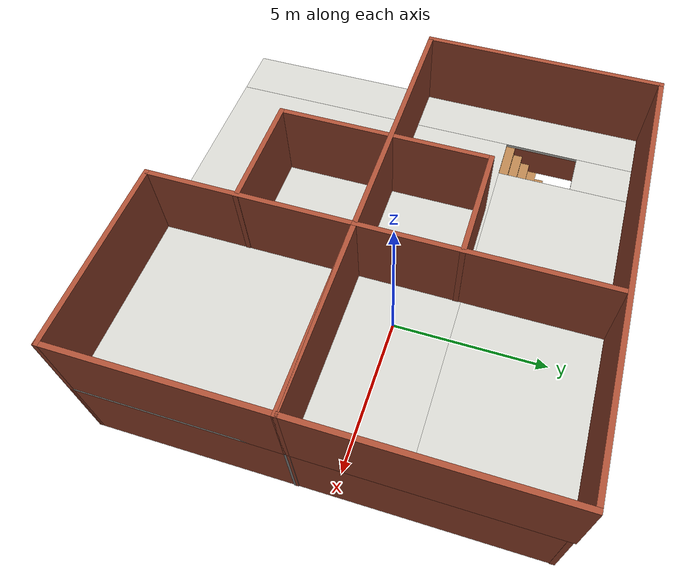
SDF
<?xml version='1.0'?>
<sdf version='1.6'>
  <model name='Robot_House'>
    <pose frame=''>-1.0701 -0.513506 0 0 -0 0</pose>
    <link name='Floor_0'>
      <pose frame=''>0.01984 0.000185 2.5 0 -0 0</pose>
      <visual name='Floor_0_Visual_0'>
        <pose frame=''>-5.97371 0 0.05 0 -0 0</pose>
        <geometry>
          <box>
            <size>1.55259 13.5 0.1</size>
          </box>
        </geometry>
        <material>
          <script>
            <uri>file://media/materials/scripts/gazebo.material</uri>
            <name>Gazebo/CeilingTiled</name>
          </script>
          <ambient>1 1 1 1</ambient>
        </material>
        <meta>
          <layer>1</layer>
        </meta>
      </visual>
      <collision name='Floor_0_Collision_0'>
        <geometry>
          <box>
            <size>1.55259 13.5 0.1</size>
          </box>
        </geometry>
        <pose frame=''>-5.97371 0 0.05 0 -0 0</pose>
      </collision>
      <visual name='Floor_0_Visual_1'>
        <pose frame=''>0.776293 -2.10421 0.05 0 -0 0</pose>
        <geometry>
          <box>
            <size>11.9474 9.29157 0.1</size>
          </box>
        </geometry>
        <material>
          <script>
            <uri>file://media/materials/scripts/gazebo.material</uri>
            <name>Gazebo/CeilingTiled</name>
          </script>
          <ambient>1 1 1 1</ambient>
        </material>
        <meta>
          <layer>1</layer>
        </meta>
      </visual>
      <collision name='Floor_0_Collision_1'>
        <geometry>
          <box>
            <size>11.9474 9.29157 0.1</size>
          </box>
        </geometry>
        <pose frame=''>0.776293 -2.10421 0.05 0 -0 0</pose>
      </collision>
      <visual name='Floor_0_Visual_2'>
        <pose frame=''>1.42519 4.64579 0.05 0 -0 0</pose>
        <geometry>
          <box>
            <size>10.6496 4.20843 0.1</size>
          </box>
        </geometry>
        <material>
          <script>
            <uri>file://media/materials/scripts/gazebo.material</uri>
            <name>Gazebo/CeilingTiled</name>
          </script>
          <ambient>1 1 1 1</ambient>
        </material>
        <meta>
          <layer>1</layer>
        </meta>
      </visual>
      <collision name='Floor_0_Collision_2'>
        <geometry>
          <box>
            <size>10.6496 4.20843 0.1</size>
          </box>
        </geometry>
        <pose frame=''>1.42519 4.64579 0.05 0 -0 0</pose>
      </collision>
      <visual name='Floor_0_Visual_3'>
        <pose frame=''>-4.54852 5.79303 0.05 0 -0 0</pose>
        <geometry>
          <box>
            <size>1.29779 1.91393 0.1</size>
          </box>
        </geometry>
        <material>
          <script>
            <uri>file://media/materials/scripts/gazebo.material</uri>
            <name>Gazebo/CeilingTiled</name>
          </script>
          <ambient>1 1 1 1</ambient>
        </material>
        <meta>
          <layer>1</layer>
        </meta>
      </visual>
      <collision name='Floor_0_Collision_3'>
        <geometry>
          <box>
            <size>1.29779 1.91393 0.1</size>
          </box>
        </geometry>
        <pose frame=''>-4.54852 5.79303 0.05 0 -0 0</pose>
      </collision>
    </link>
    <link name='Stairs_1'>
      <visual name='Stairs_1_Visual_0'>
        <pose frame=''>-4.52868 4.69285 0.15625 0 -0 0</pose>
        <geometry>
          <box>
            <size>1.29779 0.286812 0.3125</size>
          </box>
        </geometry>
        <material>
          <script>
            <uri>file://media/materials/scripts/gazebo.material</uri>
            <name>Gazebo/Wood</name>
          </script>
          <ambient>1 1 1 1</ambient>
        </material>
        <meta>
          <layer>0</layer>
        </meta>
      </visual>
      <collision name='Stairs_1_Collision_0'>
        <geometry>
          <box>
            <size>1.29779 0.286812 0.3125</size>
          </box>
        </geometry>
        <pose frame=''>-4.52868 4.69285 0.15625 0 -0 0</pose>
      </collision>
      <visual name='Stairs_1_Visual_1'>
        <pose frame=''>-4.52868 4.40604 0.46875 0 -0 0</pose>
        <geometry>
          <box>
            <size>1.29779 0.286812 0.3125</size>
          </box>
        </geometry>
        <material>
          <script>
            <uri>file://media/materials/scripts/gazebo.material</uri>
            <name>Gazebo/Wood</name>
          </script>
          <ambient>1 1 1 1</ambient>
        </material>
        <meta>
          <layer>0</layer>
        </meta>
      </visual>
      <collision name='Stairs_1_Collision_1'>
        <geometry>
          <box>
            <size>1.29779 0.286812 0.3125</size>
          </box>
        </geometry>
        <pose frame=''>-4.52868 4.40604 0.46875 0 -0 0</pose>
      </collision>
      <visual name='Stairs_1_Visual_2'>
        <pose frame=''>-4.52868 4.11922 0.78125 0 -0 0</pose>
        <geometry>
          <box>
            <size>1.29779 0.286812 0.3125</size>
          </box>
        </geometry>
        <material>
          <script>
            <uri>file://media/materials/scripts/gazebo.material</uri>
            <name>Gazebo/Wood</name>
          </script>
          <ambient>1 1 1 1</ambient>
        </material>
        <meta>
          <layer>0</layer>
        </meta>
      </visual>
      <collision name='Stairs_1_Collision_2'>
        <geometry>
          <box>
            <size>1.29779 0.286812 0.3125</size>
          </box>
        </geometry>
        <pose frame=''>-4.52868 4.11922 0.78125 0 -0 0</pose>
      </collision>
      <visual name='Stairs_1_Visual_3'>
        <pose frame=''>-4.52868 3.83241 1.09375 0 -0 0</pose>
        <geometry>
          <box>
            <size>1.29779 0.286812 0.3125</size>
          </box>
        </geometry>
        <material>
          <script>
            <uri>file://media/materials/scripts/gazebo.material</uri>
            <name>Gazebo/Wood</name>
          </script>
          <ambient>1 1 1 1</ambient>
        </material>
        <meta>
          <layer>0</layer>
        </meta>
      </visual>
      <collision name='Stairs_1_Collision_3'>
        <geometry>
          <box>
            <size>1.29779 0.286812 0.3125</size>
          </box>
        </geometry>
        <pose frame=''>-4.52868 3.83241 1.09375 0 -0 0</pose>
      </collision>
      <visual name='Stairs_1_Visual_4'>
        <pose frame=''>-4.52868 3.5456 1.40625 0 -0 0</pose>
        <geometry>
          <box>
            <size>1.29779 0.286812 0.3125</size>
          </box>
        </geometry>
        <material>
          <script>
            <uri>file://media/materials/scripts/gazebo.material</uri>
            <name>Gazebo/Wood</name>
          </script>
          <ambient>1 1 1 1</ambient>
        </material>
        <meta>
          <layer>0</layer>
        </meta>
      </visual>
      <collision name='Stairs_1_Collision_4'>
        <geometry>
          <box>
            <size>1.29779 0.286812 0.3125</size>
          </box>
        </geometry>
        <pose frame=''>-4.52868 3.5456 1.40625 0 -0 0</pose>
      </collision>
      <visual name='Stairs_1_Visual_5'>
        <pose frame=''>-4.52868 3.25879 1.71875 0 -0 0</pose>
        <geometry>
          <box>
            <size>1.29779 0.286812 0.3125</size>
          </box>
        </geometry>
        <material>
          <script>
            <uri>file://media/materials/scripts/gazebo.material</uri>
            <name>Gazebo/Wood</name>
          </script>
          <ambient>1 1 1 1</ambient>
        </material>
        <meta>
          <layer>0</layer>
        </meta>
      </visual>
      <collision name='Stairs_1_Collision_5'>
        <geometry>
          <box>
            <size>1.29779 0.286812 0.3125</size>
          </box>
        </geometry>
        <pose frame=''>-4.52868 3.25879 1.71875 0 -0 0</pose>
      </collision>
      <visual name='Stairs_1_Visual_6'>
        <pose frame=''>-4.52868 2.97197 2.03125 0 -0 0</pose>
        <geometry>
          <box>
            <size>1.29779 0.286812 0.3125</size>
          </box>
        </geometry>
        <material>
          <script>
            <uri>file://media/materials/scripts/gazebo.material</uri>
            <name>Gazebo/Wood</name>
          </script>
          <ambient>1 1 1 1</ambient>
        </material>
        <meta>
          <layer>0</layer>
        </meta>
      </visual>
      <collision name='Stairs_1_Collision_6'>
        <geometry>
          <box>
            <size>1.29779 0.286812 0.3125</size>
          </box>
        </geometry>
        <pose frame=''>-4.52868 2.97197 2.03125 0 -0 0</pose>
      </collision>
      <visual name='Stairs_1_Visual_7'>
        <pose frame=''>-4.52868 2.68516 2.34375 0 -0 0</pose>
        <geometry>
          <box>
            <size>1.29779 0.286812 0.3125</size>
          </box>
        </geometry>
        <material>
          <script>
            <uri>file://media/materials/scripts/gazebo.material</uri>
            <name>Gazebo/Wood</name>
          </script>
          <ambient>1 1 1 1</ambient>
        </material>
        <meta>
          <layer>0</layer>
        </meta>
      </visual>
      <collision name='Stairs_1_Collision_7'>
        <geometry>
          <box>
            <size>1.29779 0.286812 0.3125</size>
          </box>
        </geometry>
        <pose frame=''>-4.52868 2.68516 2.34375 0 -0 0</pose>
      </collision>
    </link>
    <link name='Wall_15'>
      <collision name='Wall_15_Collision'>
        <geometry>
          <box>
            <size>13.5 0.15 2.5</size>
          </box>
        </geometry>
        <pose frame=''>0 0 1.25 0 -0 0</pose>
      </collision>
      <visual name='Wall_15_Visual'>
        <pose frame=''>0 0 1.25 0 -0 0</pose>
        <geometry>
          <box>
            <size>13.5 0.15 2.5</size>
          </box>
        </geometry>
        <material>
          <script>
            <uri>file://media/materials/scripts/gazebo.material</uri>
            <name>Gazebo/Bricks</name>
          </script>
          <ambient>1 1 1 1</ambient>
        </material>
        <meta>
          <layer>0</layer>
        </meta>
      </visual>
      <pose frame=''>-0.007107 6.63249 0 0 -0 0</pose>
    </link>
    <link name='Wall_16'>
      <collision name='Wall_16_Collision'>
        <geometry>
          <box>
            <size>13.4574 0.15 2.5</size>
          </box>
        </geometry>
        <pose frame=''>0 0 1.25 0 -0 0</pose>
      </collision>
      <visual name='Wall_16_Visual'>
        <pose frame=''>0 0 1.25 0 -0 0</pose>
        <geometry>
          <box>
            <size>13.4574 0.15 2.5</size>
          </box>
        </geometry>
        <material>
          <script>
            <uri>file://media/materials/scripts/gazebo.material</uri>
            <name>Gazebo/Bricks</name>
          </script>
          <ambient>1 1 1 1</ambient>
        </material>
        <meta>
          <layer>0</layer>
        </meta>
      </visual>
      <pose frame=''>6.67509 -0.021162 0 0 -0 -1.56783</pose>
    </link>
    <link name='Wall_17'>
      <pose frame=''>3.89484 -6.67481 0 0 -0 3.14159</pose>
      <visual name='Wall_17_Visual_0'>
        <pose frame=''>-1.68916 0 1.25 0 -0 0</pose>
        <geometry>
          <box>
            <size>2.37168 0.15 2.5</size>
          </box>
        </geometry>
        <material>
          <script>
            <uri>file://media/materials/scripts/gazebo.material</uri>
            <name>Gazebo/Bricks</name>
          </script>
          <ambient>1 1 1 1</ambient>
        </material>
        <meta>
          <layer>0</layer>
        </meta>
      </visual>
      <collision name='Wall_17_Collision_0'>
        <geometry>
          <box>
            <size>2.37168 0.15 2.5</size>
          </box>
        </geometry>
        <pose frame=''>-1.68916 0 1.25 0 -0 0</pose>
      </collision>
      <visual name='Wall_17_Visual_1'>
        <pose frame=''>1.18584 0 0.25 0 -0 0</pose>
        <geometry>
          <box>
            <size>3.37832 0.15 0.5</size>
          </box>
        </geometry>
        <material>
          <script>
            <uri>file://media/materials/scripts/gazebo.material</uri>
            <name>Gazebo/Bricks</name>
          </script>
          <ambient>1 1 1 1</ambient>
        </material>
        <meta>
          <layer>0</layer>
        </meta>
      </visual>
      <collision name='Wall_17_Collision_1'>
        <geometry>
          <box>
            <size>3.37832 0.15 0.5</size>
          </box>
        </geometry>
        <pose frame=''>1.18584 0 0.25 0 -0 0</pose>
      </collision>
      <visual name='Wall_17_Visual_2'>
        <pose frame=''>1.58584 0 1.5 0 -0 0</pose>
        <geometry>
          <box>
            <size>2.57832 0.15 2</size>
          </box>
        </geometry>
        <material>
          <script>
            <uri>file://media/materials/scripts/gazebo.material</uri>
            <name>Gazebo/Bricks</name>
          </script>
          <ambient>1 1 1 1</ambient>
        </material>
        <meta>
          <layer>0</layer>
        </meta>
      </visual>
      <collision name='Wall_17_Collision_2'>
        <geometry>
          <box>
            <size>2.57832 0.15 2</size>
          </box>
        </geometry>
        <pose frame=''>1.58584 0 1.5 0 -0 0</pose>
      </collision>
      <visual name='Wall_17_Visual_3'>
        <pose frame=''>-0.103324 0 1.9 0 -0 0</pose>
        <geometry>
          <box>
            <size>0.8 0.15 1.2</size>
          </box>
        </geometry>
        <material>
          <script>
            <uri>file://media/materials/scripts/gazebo.material</uri>
            <name>Gazebo/Bricks</name>
          </script>
          <ambient>1 1 1 1</ambient>
        </material>
        <meta>
          <layer>0</layer>
        </meta>
      </visual>
      <collision name='Wall_17_Collision_3'>
        <geometry>
          <box>
            <size>0.8 0.15 1.2</size>
          </box>
        </geometry>
        <pose frame=''>-0.103324 0 1.9 0 -0 0</pose>
      </collision>
    </link>
    <link name='Wall_18'>
      <collision name='Wall_18_Collision'>
        <geometry>
          <box>
            <size>6.23392 0.15 2.5</size>
          </box>
        </geometry>
        <pose frame=''>0 0 1.25 0 -0 0</pose>
      </collision>
      <visual name='Wall_18_Visual'>
        <pose frame=''>0 0 1.25 0 -0 0</pose>
        <geometry>
          <box>
            <size>6.23392 0.15 2.5</size>
          </box>
        </geometry>
        <material>
          <script>
            <uri>file://media/materials/scripts/gazebo.material</uri>
            <name>Gazebo/Bricks</name>
          </script>
          <ambient>1 1 1 1</ambient>
        </material>
        <meta>
          <layer>0</layer>
        </meta>
      </visual>
      <pose frame=''>1.07979 -3.63289 0 0 -0 1.57574</pose>
    </link>
    <link name='Wall_19'>
      <collision name='Wall_19_Collision'>
        <geometry>
          <box>
            <size>5.78009 0.15 2.5</size>
          </box>
        </geometry>
        <pose frame=''>0 0 1.25 0 -0 0</pose>
      </collision>
      <visual name='Wall_19_Visual'>
        <pose frame=''>0 0 1.25 0 -0 0</pose>
        <geometry>
          <box>
            <size>5.78009 0.15 2.5</size>
          </box>
        </geometry>
        <material>
          <script>
            <uri>file://media/materials/scripts/gazebo.material</uri>
            <name>Gazebo/Grey</name>
          </script>
          <ambient>1 1 1 1</ambient>
        </material>
        <meta>
          <layer>0</layer>
        </meta>
      </visual>
      <pose frame=''>3.87979 -0.582893 0 0 -0 0.00287</pose>
    </link>
    <link name='Wall_20'>
      <pose frame=''>0.01984 -0.574815 0 0 -0 3.14159</pose>
      <visual name='Wall_20_Visual_0'>
        <pose frame=''>-5.51781 0 1.25 0 -0 0</pose>
        <geometry>
          <box>
            <size>2.46439 0.15 2.5</size>
          </box>
        </geometry>
        <material>
          <script>
            <uri>file://media/materials/scripts/gazebo.material</uri>
            <name>Gazebo/Bricks</name>
          </script>
          <ambient>1 1 1 1</ambient>
        </material>
        <meta>
          <layer>0</layer>
        </meta>
      </visual>
      <collision name='Wall_20_Collision_0'>
        <geometry>
          <box>
            <size>2.46439 0.15 2.5</size>
          </box>
        </geometry>
        <pose frame=''>-5.51781 0 1.25 0 -0 0</pose>
      </collision>
      <visual name='Wall_20_Visual_1'>
        <pose frame=''>-1.3884 0 1.25 0 -0 0</pose>
        <geometry>
          <box>
            <size>3.99444 0.15 2.5</size>
          </box>
        </geometry>
        <material>
          <script>
            <uri>file://media/materials/scripts/gazebo.material</uri>
            <name>Gazebo/Bricks</name>
          </script>
          <ambient>1 1 1 1</ambient>
        </material>
        <meta>
          <layer>0</layer>
        </meta>
      </visual>
      <collision name='Wall_20_Collision_1'>
        <geometry>
          <box>
            <size>3.99444 0.15 2.5</size>
          </box>
        </geometry>
        <pose frame=''>-1.3884 0 1.25 0 -0 0</pose>
      </collision>
      <visual name='Wall_20_Visual_2'>
        <pose frame=''>4.12941 0 1.25 0 -0 0</pose>
        <geometry>
          <box>
            <size>5.24118 0.15 2.5</size>
          </box>
        </geometry>
        <material>
          <script>
            <uri>file://media/materials/scripts/gazebo.material</uri>
            <name>Gazebo/Bricks</name>
          </script>
          <ambient>1 1 1 1</ambient>
        </material>
        <meta>
          <layer>0</layer>
        </meta>
      </visual>
      <collision name='Wall_20_Collision_2'>
        <geometry>
          <box>
            <size>5.24118 0.15 2.5</size>
          </box>
        </geometry>
        <pose frame=''>4.12941 0 1.25 0 -0 0</pose>
      </collision>
      <visual name='Wall_20_Visual_3'>
        <pose frame=''>-3.83562 0 2.25 0 -0 0</pose>
        <geometry>
          <box>
            <size>0.9 0.15 0.5</size>
          </box>
        </geometry>
        <material>
          <script>
            <uri>file://media/materials/scripts/gazebo.material</uri>
            <name>Gazebo/Bricks</name>
          </script>
          <ambient>1 1 1 1</ambient>
        </material>
        <meta>
          <layer>0</layer>
        </meta>
      </visual>
      <collision name='Wall_20_Collision_3'>
        <geometry>
          <box>
            <size>0.9 0.15 0.5</size>
          </box>
        </geometry>
        <pose frame=''>-3.83562 0 2.25 0 -0 0</pose>
      </collision>
      <visual name='Wall_20_Visual_4'>
        <pose frame=''>1.05882 0 2.25 0 -0 0</pose>
        <geometry>
          <box>
            <size>0.9 0.15 0.5</size>
          </box>
        </geometry>
        <material>
          <script>
            <uri>file://media/materials/scripts/gazebo.material</uri>
            <name>Gazebo/Bricks</name>
          </script>
          <ambient>1 1 1 1</ambient>
        </material>
        <meta>
          <layer>0</layer>
        </meta>
      </visual>
      <collision name='Wall_20_Collision_4'>
        <geometry>
          <box>
            <size>0.9 0.15 0.5</size>
          </box>
        </geometry>
        <pose frame=''>1.05882 0 2.25 0 -0 0</pose>
      </collision>
    </link>
    <link name='Wall_21'>
      <collision name='Wall_21_Collision'>
        <geometry>
          <box>
            <size>7.35756 0.15 2.5</size>
          </box>
        </geometry>
        <pose frame=''>0 0 1.25 0 -0 0</pose>
      </collision>
      <visual name='Wall_21_Visual'>
        <pose frame=''>0 0 1.25 0 -0 0</pose>
        <geometry>
          <box>
            <size>7.35756 0.15 2.5</size>
          </box>
        </geometry>
        <material>
          <script>
            <uri>file://media/materials/scripts/gazebo.material</uri>
            <name>Gazebo/Bricks</name>
          </script>
          <ambient>1 1 1 1</ambient>
        </material>
        <meta>
          <layer>0</layer>
        </meta>
      </visual>
      <pose frame=''>-6.67491 3.02884 0 0 -0 1.57628</pose>
    </link>
    <link name='Wall_23'>
      <pose frame=''>1.06475 2.96851 0 0 -0 1.5708</pose>
      <visual name='Wall_23_Visual_0'>
        <pose frame=''>-3.16683 0 1.25 0 -0 0</pose>
        <geometry>
          <box>
            <size>0.916334 0.15 2.5</size>
          </box>
        </geometry>
        <material>
          <script>
            <uri>file://media/materials/scripts/gazebo.material</uri>
            <name>Gazebo/Bricks</name>
          </script>
          <ambient>1 1 1 1</ambient>
        </material>
        <meta>
          <layer>0</layer>
        </meta>
      </visual>
      <collision name='Wall_23_Collision_0'>
        <geometry>
          <box>
            <size>0.916334 0.15 2.5</size>
          </box>
        </geometry>
        <pose frame=''>-3.16683 0 1.25 0 -0 0</pose>
      </collision>
      <visual name='Wall_23_Visual_1'>
        <pose frame=''>0.908167 0 1.25 0 -0 0</pose>
        <geometry>
          <box>
            <size>5.43367 0.15 2.5</size>
          </box>
        </geometry>
        <material>
          <script>
            <uri>file://media/materials/scripts/gazebo.material</uri>
            <name>Gazebo/Bricks</name>
          </script>
          <ambient>1 1 1 1</ambient>
        </material>
        <meta>
          <layer>0</layer>
        </meta>
      </visual>
      <collision name='Wall_23_Collision_1'>
        <geometry>
          <box>
            <size>5.43367 0.15 2.5</size>
          </box>
        </geometry>
        <pose frame=''>0.908167 0 1.25 0 -0 0</pose>
      </collision>
      <visual name='Wall_23_Visual_2'>
        <pose frame=''>-2.25867 0 2.25 0 -0 0</pose>
        <geometry>
          <box>
            <size>0.9 0.15 0.5</size>
          </box>
        </geometry>
        <material>
          <script>
            <uri>file://media/materials/scripts/gazebo.material</uri>
            <name>Gazebo/Bricks</name>
          </script>
          <ambient>1 1 1 1</ambient>
        </material>
        <meta>
          <layer>0</layer>
        </meta>
      </visual>
      <collision name='Wall_23_Collision_2'>
        <geometry>
          <box>
            <size>0.9 0.15 0.5</size>
          </box>
        </geometry>
        <pose frame=''>-2.25867 0 2.25 0 -0 0</pose>
      </collision>
    </link>
    <link name='Wall_26'>
      <collision name='Wall_26_Collision'>
        <geometry>
          <box>
            <size>3.5 0.15 2.5</size>
          </box>
        </geometry>
        <pose frame=''>0 0 1.25 0 -0 0</pose>
      </collision>
      <visual name='Wall_26_Visual'>
        <pose frame=''>0 0 1.25 0 -0 0</pose>
        <geometry>
          <box>
            <size>3.5 0.15 2.5</size>
          </box>
        </geometry>
        <material>
          <script>
            <uri>file://media/materials/scripts/gazebo.material</uri>
            <name>Gazebo/Bricks</name>
          </script>
          <ambient>1 1 1 1</ambient>
        </material>
        <meta>
          <layer>0</layer>
        </meta>
      </visual>
      <pose frame=''>-0.566321 2.39099 0 0 -0 3.14159</pose>
    </link>
    <link name='Wall_27'>
      <pose frame=''>-2.24132 -0.784006 0 0 -0 -1.5708</pose>
      <visual name='Wall_27_Visual_0'>
        <pose frame=''>-2.5661 0 1.25 0 -0 0</pose>
        <geometry>
          <box>
            <size>1.3678 0.15 2.5</size>
          </box>
        </geometry>
        <material>
          <script>
            <uri>file://media/materials/scripts/gazebo.material</uri>
            <name>Gazebo/Bricks</name>
          </script>
          <ambient>1 1 1 1</ambient>
        </material>
        <meta>
          <layer>0</layer>
        </meta>
      </visual>
      <collision name='Wall_27_Collision_0'>
        <geometry>
          <box>
            <size>1.3678 0.15 2.5</size>
          </box>
        </geometry>
        <pose frame=''>-2.5661 0 1.25 0 -0 0</pose>
      </collision>
      <visual name='Wall_27_Visual_1'>
        <pose frame=''>1.1339 0 1.25 0 -0 0</pose>
        <geometry>
          <box>
            <size>4.2322 0.15 2.5</size>
          </box>
        </geometry>
        <material>
          <script>
            <uri>file://media/materials/scripts/gazebo.material</uri>
            <name>Gazebo/Bricks</name>
          </script>
          <ambient>1 1 1 1</ambient>
        </material>
        <meta>
          <layer>0</layer>
        </meta>
      </visual>
      <collision name='Wall_27_Collision_1'>
        <geometry>
          <box>
            <size>4.2322 0.15 2.5</size>
          </box>
        </geometry>
        <pose frame=''>1.1339 0 1.25 0 -0 0</pose>
      </collision>
      <visual name='Wall_27_Visual_2'>
        <pose frame=''>-1.4322 0 2.25 0 -0 0</pose>
        <geometry>
          <box>
            <size>0.9 0.15 0.5</size>
          </box>
        </geometry>
        <material>
          <script>
            <uri>file://media/materials/scripts/gazebo.material</uri>
            <name>Gazebo/Bricks</name>
          </script>
          <ambient>1 1 1 1</ambient>
        </material>
        <meta>
          <layer>0</layer>
        </meta>
      </visual>
      <collision name='Wall_27_Collision_2'>
        <geometry>
          <box>
            <size>0.9 0.15 0.5</size>
          </box>
        </geometry>
        <pose frame=''>-1.4322 0 2.25 0 -0 0</pose>
      </collision>
    </link>
    <link name='Wall_28'>
      <pose frame=''>-0.566321 -3.95901 0 0 -0 0</pose>
      <visual name='Wall_28_Visual_0'>
        <pose frame=''>-1.15279 0 1.25 0 -0 0</pose>
        <geometry>
          <box>
            <size>1.19442 0.15 2.5</size>
          </box>
        </geometry>
        <material>
          <script>
            <uri>file://media/materials/scripts/gazebo.material</uri>
            <name>Gazebo/Bricks</name>
          </script>
          <ambient>1 1 1 1</ambient>
        </material>
        <meta>
          <layer>0</layer>
        </meta>
      </visual>
      <collision name='Wall_28_Collision_0'>
        <geometry>
          <box>
            <size>1.19442 0.15 2.5</size>
          </box>
        </geometry>
        <pose frame=''>-1.15279 0 1.25 0 -0 0</pose>
      </collision>
      <visual name='Wall_28_Visual_1'>
        <pose frame=''>1.04721 0 1.25 0 -0 0</pose>
        <geometry>
          <box>
            <size>1.40558 0.15 2.5</size>
          </box>
        </geometry>
        <material>
          <script>
            <uri>file://media/materials/scripts/gazebo.material</uri>
            <name>Gazebo/Bricks</name>
          </script>
          <ambient>1 1 1 1</ambient>
        </material>
        <meta>
          <layer>0</layer>
        </meta>
      </visual>
      <collision name='Wall_28_Collision_1'>
        <geometry>
          <box>
            <size>1.40558 0.15 2.5</size>
          </box>
        </geometry>
        <pose frame=''>1.04721 0 1.25 0 -0 0</pose>
      </collision>
      <visual name='Wall_28_Visual_2'>
        <pose frame=''>-0.105578 0 2.25 0 -0 0</pose>
        <geometry>
          <box>
            <size>0.9 0.15 0.5</size>
          </box>
        </geometry>
        <material>
          <script>
            <uri>file://media/materials/scripts/gazebo.material</uri>
            <name>Gazebo/Bricks</name>
          </script>
          <ambient>1 1 1 1</ambient>
        </material>
        <meta>
          <layer>0</layer>
        </meta>
      </visual>
      <collision name='Wall_28_Collision_2'>
        <geometry>
          <box>
            <size>0.9 0.15 0.5</size>
          </box>
        </geometry>
        <pose frame=''>-0.105578 0 2.25 0 -0 0</pose>
      </collision>
    </link>
    <link name='Wall_30'>
      <collision name='Wall_30_Collision'>
        <geometry>
          <box>
            <size>13.5 0.15 2.5</size>
          </box>
        </geometry>
        <pose frame=''>0 0 1.25 0 -0 0</pose>
      </collision>
      <visual name='Wall_30_Visual'>
        <pose frame=''>0 0 1.25 0 -0 0</pose>
        <geometry>
          <box>
            <size>13.5 0.15 2.5</size>
          </box>
        </geometry>
        <material>
          <script>
            <uri>file://media/materials/scripts/gazebo.material</uri>
            <name>Gazebo/Bricks</name>
          </script>
          <ambient>1 1 1 1</ambient>
        </material>
        <meta>
          <layer>1</layer>
        </meta>
      </visual>
      <pose frame=''>0.01984 6.67518 2.5 0 -0 0</pose>
    </link>
    <link name='Wall_31'>
      <collision name='Wall_31_Collision'>
        <geometry>
          <box>
            <size>13.5 0.15 2.5</size>
          </box>
        </geometry>
        <pose frame=''>0 0 1.25 0 -0 0</pose>
      </collision>
      <visual name='Wall_31_Visual'>
        <pose frame=''>0 0 1.25 0 -0 0</pose>
        <geometry>
          <box>
            <size>13.5 0.15 2.5</size>
          </box>
        </geometry>
        <material>
          <script>
            <uri>file://media/materials/scripts/gazebo.material</uri>
            <name>Gazebo/Bricks</name>
          </script>
          <ambient>1 1 1 1</ambient>
        </material>
        <meta>
          <layer>1</layer>
        </meta>
      </visual>
      <pose frame=''>6.69484 0.000185 2.5 0 -0 -1.5708</pose>
    </link>
    <link name='Wall_32'>
      <collision name='Wall_32_Collision'>
        <geometry>
          <box>
            <size>5.75 0.15 2.5</size>
          </box>
        </geometry>
        <pose frame=''>0 0 1.25 0 -0 0</pose>
      </collision>
      <visual name='Wall_32_Visual'>
        <pose frame=''>0 0 1.25 0 -0 0</pose>
        <geometry>
          <box>
            <size>5.75 0.15 2.5</size>
          </box>
        </geometry>
        <material>
          <script>
            <uri>file://media/materials/scripts/gazebo.material</uri>
            <name>Gazebo/Bricks</name>
          </script>
          <ambient>1 1 1 1</ambient>
        </material>
        <meta>
          <layer>1</layer>
        </meta>
      </visual>
      <pose frame=''>3.89484 -6.67481 2.5 0 -0 3.14159</pose>
    </link>
    <link name='Wall_33'>
      <collision name='Wall_33_Collision'>
        <geometry>
          <box>
            <size>6.25 0.15 2.5</size>
          </box>
        </geometry>
        <pose frame=''>0 0 1.25 0 -0 0</pose>
      </collision>
      <visual name='Wall_33_Visual'>
        <pose frame=''>0 0 1.25 0 -0 0</pose>
        <geometry>
          <box>
            <size>6.25 0.15 2.5</size>
          </box>
        </geometry>
        <material>
          <script>
            <uri>file://media/materials/scripts/gazebo.material</uri>
            <name>Gazebo/Bricks</name>
          </script>
          <ambient>1 1 1 1</ambient>
        </material>
        <meta>
          <layer>1</layer>
        </meta>
      </visual>
      <pose frame=''>1.09484 -3.62481 2.5 0 -0 1.5708</pose>
    </link>
    <link name='Wall_34'>
      <collision name='Wall_34_Collision'>
        <geometry>
          <box>
            <size>5.75 0.15 2.5</size>
          </box>
        </geometry>
        <pose frame=''>0 0 1.25 0 -0 0</pose>
      </collision>
      <visual name='Wall_34_Visual'>
        <pose frame=''>0 0 1.25 0 -0 0</pose>
        <geometry>
          <box>
            <size>5.75 0.15 2.5</size>
          </box>
        </geometry>
        <material>
          <script>
            <uri>file://media/materials/scripts/gazebo.material</uri>
            <name>Gazebo/Bricks</name>
          </script>
          <ambient>1 1 1 1</ambient>
        </material>
        <meta>
          <layer>1</layer>
        </meta>
      </visual>
      <pose frame=''>3.89484 -0.574815 2.5 0 -0 0</pose>
    </link>
    <link name='Wall_35'>
      <collision name='Wall_35_Collision'>
        <geometry>
          <box>
            <size>13.5 0.15 2.5</size>
          </box>
        </geometry>
        <pose frame=''>0 0 1.25 0 -0 0</pose>
      </collision>
      <visual name='Wall_35_Visual'>
        <pose frame=''>0 0 1.25 0 -0 0</pose>
        <geometry>
          <box>
            <size>13.5 0.15 2.5</size>
          </box>
        </geometry>
        <material>
          <script>
            <uri>file://media/materials/scripts/gazebo.material</uri>
            <name>Gazebo/Bricks</name>
          </script>
          <ambient>1 1 1 1</ambient>
        </material>
        <meta>
          <layer>1</layer>
        </meta>
      </visual>
      <pose frame=''>0.01984 -0.574815 2.5 0 -0 3.14159</pose>
    </link>
    <link name='Wall_36'>
      <collision name='Wall_36_Collision'>
        <geometry>
          <box>
            <size>7.4 0.15 2.5</size>
          </box>
        </geometry>
        <pose frame=''>0 0 1.25 0 -0 0</pose>
      </collision>
      <visual name='Wall_36_Visual'>
        <pose frame=''>0 0 1.25 0 -0 0</pose>
        <geometry>
          <box>
            <size>7.4 0.15 2.5</size>
          </box>
        </geometry>
        <material>
          <script>
            <uri>file://media/materials/scripts/gazebo.material</uri>
            <name>Gazebo/Bricks</name>
          </script>
          <ambient>1 1 1 1</ambient>
        </material>
        <meta>
          <layer>1</layer>
        </meta>
      </visual>
      <pose frame=''>-6.65516 3.05018 2.5 0 -0 1.5708</pose>
    </link>
    <link name='Wall_37'>
      <collision name='Wall_37_Collision'>
        <geometry>
          <box>
            <size>7.25 0.15 2.5</size>
          </box>
        </geometry>
        <pose frame=''>0 0 1.25 0 -0 0</pose>
      </collision>
      <visual name='Wall_37_Visual'>
        <pose frame=''>0 0 1.25 0 -0 0</pose>
        <geometry>
          <box>
            <size>7.25 0.15 2.5</size>
          </box>
        </geometry>
        <material>
          <script>
            <uri>file://media/materials/scripts/gazebo.material</uri>
            <name>Gazebo/Bricks</name>
          </script>
          <ambient>1 1 1 1</ambient>
        </material>
        <meta>
          <layer>1</layer>
        </meta>
      </visual>
      <pose frame=''>1.09484 2.97519 2.5 0 -0 1.5708</pose>
    </link>
    <link name='Wall_38'>
      <collision name='Wall_38_Collision'>
        <geometry>
          <box>
            <size>3.5 0.15 2.5</size>
          </box>
        </geometry>
        <pose frame=''>0 0 1.25 0 -0 0</pose>
      </collision>
      <visual name='Wall_38_Visual'>
        <pose frame=''>0 0 1.25 0 -0 0</pose>
        <geometry>
          <box>
            <size>3.5 0.15 2.5</size>
          </box>
        </geometry>
        <material>
          <script>
            <uri>file://media/materials/scripts/gazebo.material</uri>
            <name>Gazebo/Bricks</name>
          </script>
          <ambient>1 1 1 1</ambient>
        </material>
        <meta>
          <layer>1</layer>
        </meta>
      </visual>
      <pose frame=''>-0.566321 2.39099 2.5 0 -0 3.14159</pose>
    </link>
    <link name='Wall_39'>
      <collision name='Wall_39_Collision'>
        <geometry>
          <box>
            <size>6.5 0.15 2.5</size>
          </box>
        </geometry>
        <pose frame=''>0 0 1.25 0 -0 0</pose>
      </collision>
      <visual name='Wall_39_Visual'>
        <pose frame=''>0 0 1.25 0 -0 0</pose>
        <geometry>
          <box>
            <size>6.5 0.15 2.5</size>
          </box>
        </geometry>
        <material>
          <script>
            <uri>file://media/materials/scripts/gazebo.material</uri>
            <name>Gazebo/Bricks</name>
          </script>
          <ambient>1 1 1 1</ambient>
        </material>
        <meta>
          <layer>1</layer>
        </meta>
      </visual>
      <pose frame=''>-2.24132 -0.784006 2.5 0 -0 -1.5708</pose>
    </link>
    <link name='Wall_40'>
      <collision name='Wall_40_Collision'>
        <geometry>
          <box>
            <size>3.5 0.15 2.5</size>
          </box>
        </geometry>
        <pose frame=''>0 0 1.25 0 -0 0</pose>
      </collision>
      <visual name='Wall_40_Visual'>
        <pose frame=''>0 0 1.25 0 -0 0</pose>
        <geometry>
          <box>
            <size>3.5 0.15 2.5</size>
          </box>
        </geometry>
        <material>
          <script>
            <uri>file://media/materials/scripts/gazebo.material</uri>
            <name>Gazebo/Bricks</name>
          </script>
          <ambient>1 1 1 1</ambient>
        </material>
        <meta>
          <layer>1</layer>
        </meta>
      </visual>
      <pose frame=''>-0.566321 -3.95901 2.5 0 -0 0</pose>
    </link>
    <link name='Window_0'>
      <collision name='Window_0_Collision'>
        <geometry>
          <box>
            <size>0.8 0.17 0.8</size>
          </box>
        </geometry>
        <pose frame=''>0 0 0.4 0 -0 0</pose>
      </collision>
      <visual name='Window_0_Visual'>
        <pose frame=''>0 0 0.4 0 -0 0</pose>
        <geometry>
          <box>
            <size>0.8 0.17 0.8</size>
          </box>
        </geometry>
        <material>
          <script>
            <uri>file://media/materials/scripts/gazebo.material</uri>
            <name>Gazebo/Grey</name>
          </script>
        </material>
      </visual>
      <pose frame=''>-4.57197 -0.646972 0.5 0 -0 0</pose>
    </link>
    <link name='Window_1'>
      <collision name='Window_1_Collision'>
        <geometry>
          <box>
            <size>0.8 0.17 0.8</size>
          </box>
        </geometry>
        <pose frame=''>0 0 0.4 0 -0 0</pose>
      </collision>
      <visual name='Window_1_Visual'>
        <pose frame=''>0 0 0.4 0 -0 0</pose>
        <geometry>
          <box>
            <size>0.8 0.17 0.8</size>
          </box>
        </geometry>
        <material>
          <script>
            <uri>file://media/materials/scripts/gazebo.material</uri>
            <name>Gazebo/Grey</name>
          </script>
        </material>
      </visual>
      <pose frame=''>2.05677 -6.66355 0.5 0 -0 0</pose>
    </link>
    <static>1</static>
  </model>
</sdf>
